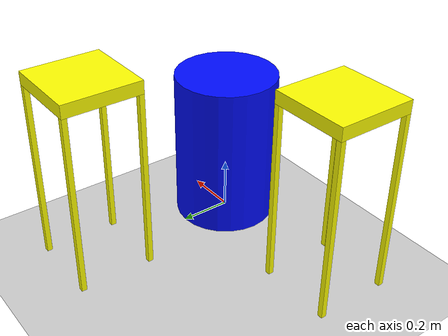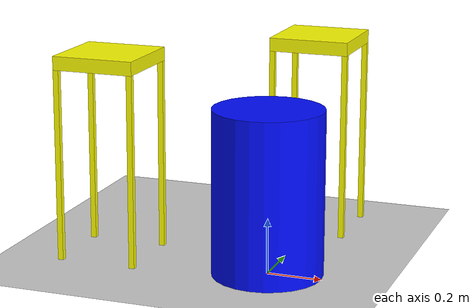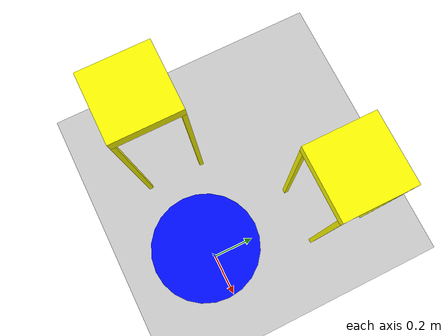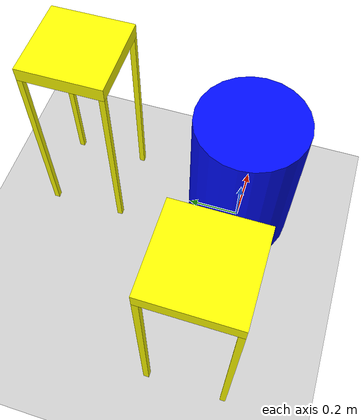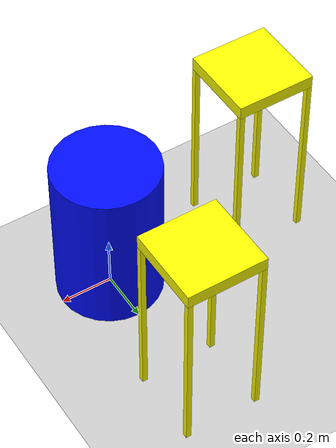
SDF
<sdf version="1.7">
 <world name="default">
  <light name="sun" type="directional">
   <pose>0 0 10 0 -0 0</pose>
   <diffuse>0.8 0.8 0.8 1</diffuse>
   <specular>0.2 0.2 0.2 1</specular>
   <attenuation>
    <range>1000</range>
    <constant>0.9</constant>
    <linear>0.01</linear>
    <quadratic>0.001</quadratic>
   </attenuation>
   <direction>-0.5 0.1 -0.9</direction>
   <spot><inner_angle>0</inner_angle><outer_angle>0</outer_angle><falloff>0</falloff></spot>
  </light>
  <model name="ground_plane">
   <static>1</static>
   <link name="link">
    <collision name="collision">
     <geometry><plane><normal>0 0 1</normal><size>100 100</size></plane></geometry>
     <surface>
      <contact><collide_bitmask>65535</collide_bitmask></contact>
      <friction><ode><mu>100</mu><mu2>50</mu2></ode></friction>
     </surface>
    </collision>
    <visual name="visual">
     <cast_shadows>0</cast_shadows>
     <geometry><plane><normal>0 0 1</normal><size>100 100</size></plane></geometry>
     <material>
      <script><uri>file://media/materials/scripts/gazebo.material</uri><name>Gazebo/Grey</name></script>
     </material>
    </visual>
   </link>
  </model>
  <gravity>0 0 -9.8</gravity>
  <magnetic_field>6e-06 2.3e-05 -4.2e-05</magnetic_field>
  <atmosphere type="adiabatic"/>
  <physics type="ode">
   <max_step_size>0.001</max_step_size>
   <real_time_factor>1</real_time_factor>
   <real_time_update_rate>1000</real_time_update_rate>
  </physics>
  <scene><ambient>0.4 0.4 0.4 1</ambient><background>0.7 0.7 0.7 1</background><shadows>1</shadows></scene>
  <spherical_coordinates>
   <surface_model>EARTH_WGS84</surface_model>
   <latitude_deg>0</latitude_deg>
   <longitude_deg>0</longitude_deg>
   <elevation>0</elevation>
   <heading_deg>0</heading_deg>
  </spherical_coordinates>
  <model name="base_robot_ros">
   <link name="link">
    <inertial>
     <mass>1</mass>
     <inertia><ixx>0.145833</ixx><ixy>0</ixy><ixz>0</ixz><iyy>0.145833</iyy><iyz>0</iyz><izz>0.125</izz></inertia>
    </inertial>
    <visual name="visual">
     <geometry><cylinder><radius>0.2</radius><length>0.6</length></cylinder></geometry>
     <material>
      <script><name>Gazebo/Grey</name><uri>file://media/materials/scripts/gazebo.material</uri></script>
      <shader type="pixel"><normal_map>__default__</normal_map></shader>
      <ambient>0 0.047 1 1</ambient>
      <diffuse>0.7 0.7 0.7 1</diffuse>
      <specular>0.01 0.01 0.01 1</specular>
      <emissive>0 0 0 1</emissive>
     </material>
    </visual>
    <collision name="collision">
     <geometry><cylinder><radius>0.2</radius><length>0.6</length></cylinder></geometry>
     <surface>
      <friction>
       <ode><mu>1</mu><mu2>1</mu2><fdir1>0 0 0</fdir1><slip1>0</slip1><slip2>0</slip2></ode>
       <torsional>
        <coefficient>1</coefficient>
        <patch_radius>0</patch_radius>
        <surface_radius>0</surface_radius>
        <use_patch_radius>1</use_patch_radius>
        <ode><slip>0</slip></ode>
       </torsional>
      </friction>
      <bounce><restitution_coefficient>0</restitution_coefficient><threshold>1e+06</threshold></bounce>
      <contact>
       <collide_without_contact>0</collide_without_contact>
       <collide_without_contact_bitmask>1</collide_without_contact_bitmask>
       <collide_bitmask>1</collide_bitmask>
       <ode>
        <soft_cfm>0</soft_cfm>
        <soft_erp>0.2</soft_erp>
        <kp>1e+13</kp>
        <kd>1</kd>
        <max_vel>0.01</max_vel>
        <min_depth>0</min_depth>
       </ode>
       <bullet>
        <split_impulse>1</split_impulse>
        <split_impulse_penetration_threshold>-0.01</split_impulse_penetration_threshold>
        <soft_cfm>0</soft_cfm>
        <soft_erp>0.2</soft_erp>
        <kp>1e+13</kp>
        <kd>1</kd>
       </bullet>
      </contact>
     </surface>
    </collision>
   </link>
   <static>0</static>
   <pose>0 0 0.3 -2e-06 -4e-06 -0</pose>
  </model>
  <model name="table_robot_ros">
   <link name="link_0">
    <inertial>
     <mass>1</mass>
     <inertia>
      <ixx>0.166667</ixx>
      <ixy>0</ixy>
      <ixz>0</ixz>
      <iyy>0.166667</iyy>
      <iyz>0</iyz>
      <izz>0.166667</izz>
     </inertia>
    </inertial>
    <pose>0 0 0.36 0 -0 0</pose>
    <visual name="visual">
     <geometry><box><size>0.3 0.3 0.05</size></box></geometry>
     <material>
      <lighting>1</lighting>
      <script><uri>file://media/materials/scripts/gazebo.material</uri><name>Gazebo/Grey</name></script>
      <shader type="pixel"><normal_map>__default__</normal_map></shader>
      <ambient>1 1 0 1</ambient>
      <diffuse>0.7 0.7 0.7 1</diffuse>
      <specular>0.01 0.01 0.01 1</specular>
      <emissive>0 0 0 1</emissive>
     </material>
    </visual>
    <collision name="collision">
     <geometry><box><size>0.3 0.3 0.05</size></box></geometry>
     <surface>
      <friction>
       <ode><mu>1</mu><mu2>1</mu2><fdir1>0 0 0</fdir1><slip1>0</slip1><slip2>0</slip2></ode>
       <torsional>
        <coefficient>1</coefficient>
        <patch_radius>0</patch_radius>
        <surface_radius>0</surface_radius>
        <use_patch_radius>1</use_patch_radius>
        <ode><slip>0</slip></ode>
       </torsional>
      </friction>
      <bounce><restitution_coefficient>0</restitution_coefficient><threshold>1e+06</threshold></bounce>
      <contact>
       <collide_without_contact>0</collide_without_contact>
       <collide_without_contact_bitmask>1</collide_without_contact_bitmask>
       <collide_bitmask>1</collide_bitmask>
       <ode>
        <soft_cfm>0</soft_cfm>
        <soft_erp>0.2</soft_erp>
        <kp>1e+13</kp>
        <kd>1</kd>
        <max_vel>0.01</max_vel>
        <min_depth>0</min_depth>
       </ode>
       <bullet>
        <split_impulse>1</split_impulse>
        <split_impulse_penetration_threshold>-0.01</split_impulse_penetration_threshold>
        <soft_cfm>0</soft_cfm>
        <soft_erp>0.2</soft_erp>
        <kp>1e+13</kp>
        <kd>1</kd>
       </bullet>
      </contact>
     </surface>
    </collision>
   </link>
   <link name="link_2">
    <inertial>
     <mass>1</mass>
     <inertia>
      <ixx>0.166667</ixx>
      <ixy>0</ixy>
      <ixz>0</ixz>
      <iyy>0.166667</iyy>
      <iyz>0</iyz>
      <izz>0.166667</izz>
     </inertia>
    </inertial>
    <pose>-0.14 -0.14 -0.015 0 -0 0</pose>
    <visual name="visual">
     <geometry><box><size>0.02 0.02 0.7</size></box></geometry>
     <material>
      <lighting>1</lighting>
      <script><uri>file://media/materials/scripts/gazebo.material</uri><name>Gazebo/Grey</name></script>
      <shader type="pixel"><normal_map>__default__</normal_map></shader>
      <ambient>1 1 0 1</ambient>
      <diffuse>0.7 0.7 0.7 1</diffuse>
      <specular>0.01 0.01 0.01 1</specular>
      <emissive>0 0 0 1</emissive>
     </material>
    </visual>
    <collision name="collision">
     <geometry><box><size>0.02 0.02 0.7</size></box></geometry>
     <surface>
      <friction>
       <ode><mu>1</mu><mu2>1</mu2><fdir1>0 0 0</fdir1><slip1>0</slip1><slip2>0</slip2></ode>
       <torsional>
        <coefficient>1</coefficient>
        <patch_radius>0</patch_radius>
        <surface_radius>0</surface_radius>
        <use_patch_radius>1</use_patch_radius>
        <ode><slip>0</slip></ode>
       </torsional>
      </friction>
      <bounce><restitution_coefficient>0</restitution_coefficient><threshold>1e+06</threshold></bounce>
      <contact>
       <collide_without_contact>0</collide_without_contact>
       <collide_without_contact_bitmask>1</collide_without_contact_bitmask>
       <collide_bitmask>1</collide_bitmask>
       <ode>
        <soft_cfm>0</soft_cfm>
        <soft_erp>0.2</soft_erp>
        <kp>1e+13</kp>
        <kd>1</kd>
        <max_vel>0.01</max_vel>
        <min_depth>0</min_depth>
       </ode>
       <bullet>
        <split_impulse>1</split_impulse>
        <split_impulse_penetration_threshold>-0.01</split_impulse_penetration_threshold>
        <soft_cfm>0</soft_cfm>
        <soft_erp>0.2</soft_erp>
        <kp>1e+13</kp>
        <kd>1</kd>
       </bullet>
      </contact>
     </surface>
    </collision>
   </link>
   <link name="link_2_clone">
    <inertial>
     <mass>1</mass>
     <inertia>
      <ixx>0.166667</ixx>
      <ixy>0</ixy>
      <ixz>0</ixz>
      <iyy>0.166667</iyy>
      <iyz>0</iyz>
      <izz>0.166667</izz>
     </inertia>
    </inertial>
    <pose>-0.14 0.14 -0.015 0 -0 0</pose>
    <visual name="visual">
     <geometry><box><size>0.02 0.02 0.7</size></box></geometry>
     <material>
      <lighting>1</lighting>
      <script><uri>file://media/materials/scripts/gazebo.material</uri><name>Gazebo/Grey</name></script>
      <shader type="pixel"><normal_map>__default__</normal_map></shader>
      <ambient>1 1 0 1</ambient>
      <diffuse>0.7 0.7 0.7 1</diffuse>
      <specular>0.01 0.01 0.01 1</specular>
      <emissive>0 0 0 1</emissive>
     </material>
    </visual>
    <collision name="collision">
     <geometry><box><size>0.02 0.02 0.7</size></box></geometry>
     <surface>
      <friction>
       <ode><mu>1</mu><mu2>1</mu2><fdir1>0 0 0</fdir1><slip1>0</slip1><slip2>0</slip2></ode>
       <torsional>
        <coefficient>1</coefficient>
        <patch_radius>0</patch_radius>
        <surface_radius>0</surface_radius>
        <use_patch_radius>1</use_patch_radius>
        <ode><slip>0</slip></ode>
       </torsional>
      </friction>
      <bounce><restitution_coefficient>0</restitution_coefficient><threshold>1e+06</threshold></bounce>
      <contact>
       <collide_without_contact>0</collide_without_contact>
       <collide_without_contact_bitmask>1</collide_without_contact_bitmask>
       <collide_bitmask>1</collide_bitmask>
       <ode>
        <soft_cfm>0</soft_cfm>
        <soft_erp>0.2</soft_erp>
        <kp>1e+13</kp>
        <kd>1</kd>
        <max_vel>0.01</max_vel>
        <min_depth>0</min_depth>
       </ode>
       <bullet>
        <split_impulse>1</split_impulse>
        <split_impulse_penetration_threshold>-0.01</split_impulse_penetration_threshold>
        <soft_cfm>0</soft_cfm>
        <soft_erp>0.2</soft_erp>
        <kp>1e+13</kp>
        <kd>1</kd>
       </bullet>
      </contact>
     </surface>
    </collision>
   </link>
   <link name="link_2_clone_0">
    <inertial>
     <mass>1</mass>
     <inertia>
      <ixx>0.166667</ixx>
      <ixy>0</ixy>
      <ixz>0</ixz>
      <iyy>0.166667</iyy>
      <iyz>0</iyz>
      <izz>0.166667</izz>
     </inertia>
    </inertial>
    <pose>0.14 0.14 -0.015 0 -0 0</pose>
    <visual name="visual">
     <geometry><box><size>0.02 0.02 0.7</size></box></geometry>
     <material>
      <lighting>1</lighting>
      <script><uri>file://media/materials/scripts/gazebo.material</uri><name>Gazebo/Grey</name></script>
      <shader type="pixel"><normal_map>__default__</normal_map></shader>
      <ambient>1 1 0 1</ambient>
      <diffuse>0.7 0.7 0.7 1</diffuse>
      <specular>0.01 0.01 0.01 1</specular>
      <emissive>0 0 0 1</emissive>
     </material>
    </visual>
    <collision name="collision">
     <geometry><box><size>0.02 0.02 0.7</size></box></geometry>
     <surface>
      <friction>
       <ode><mu>1</mu><mu2>1</mu2><fdir1>0 0 0</fdir1><slip1>0</slip1><slip2>0</slip2></ode>
       <torsional>
        <coefficient>1</coefficient>
        <patch_radius>0</patch_radius>
        <surface_radius>0</surface_radius>
        <use_patch_radius>1</use_patch_radius>
        <ode><slip>0</slip></ode>
       </torsional>
      </friction>
      <bounce><restitution_coefficient>0</restitution_coefficient><threshold>1e+06</threshold></bounce>
      <contact>
       <collide_without_contact>0</collide_without_contact>
       <collide_without_contact_bitmask>1</collide_without_contact_bitmask>
       <collide_bitmask>1</collide_bitmask>
       <ode>
        <soft_cfm>0</soft_cfm>
        <soft_erp>0.2</soft_erp>
        <kp>1e+13</kp>
        <kd>1</kd>
        <max_vel>0.01</max_vel>
        <min_depth>0</min_depth>
       </ode>
       <bullet>
        <split_impulse>1</split_impulse>
        <split_impulse_penetration_threshold>-0.01</split_impulse_penetration_threshold>
        <soft_cfm>0</soft_cfm>
        <soft_erp>0.2</soft_erp>
        <kp>1e+13</kp>
        <kd>1</kd>
       </bullet>
      </contact>
     </surface>
    </collision>
   </link>
   <link name="link_2_clone_1">
    <inertial>
     <mass>1</mass>
     <inertia>
      <ixx>0.166667</ixx>
      <ixy>0</ixy>
      <ixz>0</ixz>
      <iyy>0.166667</iyy>
      <iyz>0</iyz>
      <izz>0.166667</izz>
     </inertia>
    </inertial>
    <pose>0.14 -0.14 -0.015 0 -0 0</pose>
    <visual name="visual">
     <geometry><box><size>0.02 0.02 0.7</size></box></geometry>
     <material>
      <lighting>1</lighting>
      <script><uri>file://media/materials/scripts/gazebo.material</uri><name>Gazebo/Grey</name></script>
      <shader type="pixel"><normal_map>__default__</normal_map></shader>
      <ambient>1 1 0 1</ambient>
      <diffuse>0.7 0.7 0.7 1</diffuse>
      <specular>0.01 0.01 0.01 1</specular>
      <emissive>0 0 0 1</emissive>
     </material>
    </visual>
    <collision name="collision">
     <geometry><box><size>0.02 0.02 0.7</size></box></geometry>
     <surface>
      <friction>
       <ode><mu>1</mu><mu2>1</mu2><fdir1>0 0 0</fdir1><slip1>0</slip1><slip2>0</slip2></ode>
       <torsional>
        <coefficient>1</coefficient>
        <patch_radius>0</patch_radius>
        <surface_radius>0</surface_radius>
        <use_patch_radius>1</use_patch_radius>
        <ode><slip>0</slip></ode>
       </torsional>
      </friction>
      <bounce><restitution_coefficient>0</restitution_coefficient><threshold>1e+06</threshold></bounce>
      <contact>
       <collide_without_contact>0</collide_without_contact>
       <collide_without_contact_bitmask>1</collide_without_contact_bitmask>
       <collide_bitmask>1</collide_bitmask>
       <ode>
        <soft_cfm>0</soft_cfm>
        <soft_erp>0.2</soft_erp>
        <kp>1e+13</kp>
        <kd>1</kd>
        <max_vel>0.01</max_vel>
        <min_depth>0</min_depth>
       </ode>
       <bullet>
        <split_impulse>1</split_impulse>
        <split_impulse_penetration_threshold>-0.01</split_impulse_penetration_threshold>
        <soft_cfm>0</soft_cfm>
        <soft_erp>0.2</soft_erp>
        <kp>1e+13</kp>
        <kd>1</kd>
       </bullet>
      </contact>
     </surface>
    </collision>
   </link>
   <joint name="link_0_JOINT_10" type="fixed">
    <parent>link_0</parent>
    <child>link_2</child>
    <physics>
     <ode><limit><cfm>0</cfm><erp>0.2</erp></limit><suspension><cfm>0</cfm><erp>0.2</erp></suspension></ode>
    </physics>
   </joint>
   <joint name="link_0_JOINT_7" type="fixed">
    <parent>link_0</parent>
    <child>link_2_clone_0</child>
    <physics>
     <ode><limit><cfm>0</cfm><erp>0.2</erp></limit><suspension><cfm>0</cfm><erp>0.2</erp></suspension></ode>
    </physics>
   </joint>
   <joint name="link_0_JOINT_8" type="fixed">
    <parent>link_0</parent>
    <child>link_2_clone_1</child>
    <physics>
     <ode><limit><cfm>0</cfm><erp>0.2</erp></limit><suspension><cfm>0</cfm><erp>0.2</erp></suspension></ode>
    </physics>
   </joint>
   <joint name="link_0_JOINT_9" type="fixed">
    <parent>link_0</parent>
    <child>link_2_clone</child>
    <physics>
     <ode><limit><cfm>0</cfm><erp>0.2</erp></limit><suspension><cfm>0</cfm><erp>0.2</erp></suspension></ode>
    </physics>
   </joint>
   <static>0</static>
   <pose>-0.6 0 0.375 0 -0 0</pose>
  </model>
  <model name="table_robot_ros_clone">
   <link name="link_0">
    <inertial>
     <mass>1</mass>
     <inertia>
      <ixx>0.166667</ixx>
      <ixy>0</ixy>
      <ixz>0</ixz>
      <iyy>0.166667</iyy>
      <iyz>0</iyz>
      <izz>0.166667</izz>
     </inertia>
    </inertial>
    <pose>0 0 0.36 0 -0 0</pose>
    <visual name="visual">
     <geometry><box><size>0.3 0.3 0.05</size></box></geometry>
     <material>
      <lighting>1</lighting>
      <script><uri>file://media/materials/scripts/gazebo.material</uri><name>Gazebo/Grey</name></script>
      <shader type="pixel"><normal_map>__default__</normal_map></shader>
      <ambient>1 1 0 1</ambient>
      <diffuse>0.7 0.7 0.7 1</diffuse>
      <specular>0.01 0.01 0.01 1</specular>
      <emissive>0 0 0 1</emissive>
     </material>
    </visual>
    <collision name="collision">
     <geometry><box><size>0.3 0.3 0.05</size></box></geometry>
     <surface>
      <friction>
       <ode><mu>1</mu><mu2>1</mu2><fdir1>0 0 0</fdir1><slip1>0</slip1><slip2>0</slip2></ode>
       <torsional>
        <coefficient>1</coefficient>
        <patch_radius>0</patch_radius>
        <surface_radius>0</surface_radius>
        <use_patch_radius>1</use_patch_radius>
        <ode><slip>0</slip></ode>
       </torsional>
      </friction>
      <bounce><restitution_coefficient>0</restitution_coefficient><threshold>1e+06</threshold></bounce>
      <contact>
       <collide_without_contact>0</collide_without_contact>
       <collide_without_contact_bitmask>1</collide_without_contact_bitmask>
       <collide_bitmask>1</collide_bitmask>
       <ode>
        <soft_cfm>0</soft_cfm>
        <soft_erp>0.2</soft_erp>
        <kp>1e+13</kp>
        <kd>1</kd>
        <max_vel>0.01</max_vel>
        <min_depth>0</min_depth>
       </ode>
       <bullet>
        <split_impulse>1</split_impulse>
        <split_impulse_penetration_threshold>-0.01</split_impulse_penetration_threshold>
        <soft_cfm>0</soft_cfm>
        <soft_erp>0.2</soft_erp>
        <kp>1e+13</kp>
        <kd>1</kd>
       </bullet>
      </contact>
     </surface>
    </collision>
   </link>
   <link name="link_2">
    <inertial>
     <mass>1</mass>
     <inertia>
      <ixx>0.166667</ixx>
      <ixy>0</ixy>
      <ixz>0</ixz>
      <iyy>0.166667</iyy>
      <iyz>0</iyz>
      <izz>0.166667</izz>
     </inertia>
    </inertial>
    <pose>-0.14 -0.14 -0.015 0 -0 0</pose>
    <visual name="visual">
     <geometry><box><size>0.02 0.02 0.7</size></box></geometry>
     <material>
      <lighting>1</lighting>
      <script><uri>file://media/materials/scripts/gazebo.material</uri><name>Gazebo/Grey</name></script>
      <shader type="pixel"><normal_map>__default__</normal_map></shader>
      <ambient>1 1 0 1</ambient>
      <diffuse>0.7 0.7 0.7 1</diffuse>
      <specular>0.01 0.01 0.01 1</specular>
      <emissive>0 0 0 1</emissive>
     </material>
    </visual>
    <collision name="collision">
     <geometry><box><size>0.02 0.02 0.7</size></box></geometry>
     <surface>
      <friction>
       <ode><mu>1</mu><mu2>1</mu2><fdir1>0 0 0</fdir1><slip1>0</slip1><slip2>0</slip2></ode>
       <torsional>
        <coefficient>1</coefficient>
        <patch_radius>0</patch_radius>
        <surface_radius>0</surface_radius>
        <use_patch_radius>1</use_patch_radius>
        <ode><slip>0</slip></ode>
       </torsional>
      </friction>
      <bounce><restitution_coefficient>0</restitution_coefficient><threshold>1e+06</threshold></bounce>
      <contact>
       <collide_without_contact>0</collide_without_contact>
       <collide_without_contact_bitmask>1</collide_without_contact_bitmask>
       <collide_bitmask>1</collide_bitmask>
       <ode>
        <soft_cfm>0</soft_cfm>
        <soft_erp>0.2</soft_erp>
        <kp>1e+13</kp>
        <kd>1</kd>
        <max_vel>0.01</max_vel>
        <min_depth>0</min_depth>
       </ode>
       <bullet>
        <split_impulse>1</split_impulse>
        <split_impulse_penetration_threshold>-0.01</split_impulse_penetration_threshold>
        <soft_cfm>0</soft_cfm>
        <soft_erp>0.2</soft_erp>
        <kp>1e+13</kp>
        <kd>1</kd>
       </bullet>
      </contact>
     </surface>
    </collision>
   </link>
   <link name="link_2_clone">
    <inertial>
     <mass>1</mass>
     <inertia>
      <ixx>0.166667</ixx>
      <ixy>0</ixy>
      <ixz>0</ixz>
      <iyy>0.166667</iyy>
      <iyz>0</iyz>
      <izz>0.166667</izz>
     </inertia>
    </inertial>
    <pose>-0.14 0.14 -0.015 0 -0 0</pose>
    <visual name="visual">
     <geometry><box><size>0.02 0.02 0.7</size></box></geometry>
     <material>
      <lighting>1</lighting>
      <script><uri>file://media/materials/scripts/gazebo.material</uri><name>Gazebo/Grey</name></script>
      <shader type="pixel"><normal_map>__default__</normal_map></shader>
      <ambient>1 1 0 1</ambient>
      <diffuse>0.7 0.7 0.7 1</diffuse>
      <specular>0.01 0.01 0.01 1</specular>
      <emissive>0 0 0 1</emissive>
     </material>
    </visual>
    <collision name="collision">
     <geometry><box><size>0.02 0.02 0.7</size></box></geometry>
     <surface>
      <friction>
       <ode><mu>1</mu><mu2>1</mu2><fdir1>0 0 0</fdir1><slip1>0</slip1><slip2>0</slip2></ode>
       <torsional>
        <coefficient>1</coefficient>
        <patch_radius>0</patch_radius>
        <surface_radius>0</surface_radius>
        <use_patch_radius>1</use_patch_radius>
        <ode><slip>0</slip></ode>
       </torsional>
      </friction>
      <bounce><restitution_coefficient>0</restitution_coefficient><threshold>1e+06</threshold></bounce>
      <contact>
       <collide_without_contact>0</collide_without_contact>
       <collide_without_contact_bitmask>1</collide_without_contact_bitmask>
       <collide_bitmask>1</collide_bitmask>
       <ode>
        <soft_cfm>0</soft_cfm>
        <soft_erp>0.2</soft_erp>
        <kp>1e+13</kp>
        <kd>1</kd>
        <max_vel>0.01</max_vel>
        <min_depth>0</min_depth>
       </ode>
       <bullet>
        <split_impulse>1</split_impulse>
        <split_impulse_penetration_threshold>-0.01</split_impulse_penetration_threshold>
        <soft_cfm>0</soft_cfm>
        <soft_erp>0.2</soft_erp>
        <kp>1e+13</kp>
        <kd>1</kd>
       </bullet>
      </contact>
     </surface>
    </collision>
   </link>
   <link name="link_2_clone_0">
    <inertial>
     <mass>1</mass>
     <inertia>
      <ixx>0.166667</ixx>
      <ixy>0</ixy>
      <ixz>0</ixz>
      <iyy>0.166667</iyy>
      <iyz>0</iyz>
      <izz>0.166667</izz>
     </inertia>
    </inertial>
    <pose>0.14 0.14 -0.015 0 -0 0</pose>
    <visual name="visual">
     <geometry><box><size>0.02 0.02 0.7</size></box></geometry>
     <material>
      <lighting>1</lighting>
      <script><uri>file://media/materials/scripts/gazebo.material</uri><name>Gazebo/Grey</name></script>
      <shader type="pixel"><normal_map>__default__</normal_map></shader>
      <ambient>1 1 0 1</ambient>
      <diffuse>0.7 0.7 0.7 1</diffuse>
      <specular>0.01 0.01 0.01 1</specular>
      <emissive>0 0 0 1</emissive>
     </material>
    </visual>
    <collision name="collision">
     <geometry><box><size>0.02 0.02 0.7</size></box></geometry>
     <surface>
      <friction>
       <ode><mu>1</mu><mu2>1</mu2><fdir1>0 0 0</fdir1><slip1>0</slip1><slip2>0</slip2></ode>
       <torsional>
        <coefficient>1</coefficient>
        <patch_radius>0</patch_radius>
        <surface_radius>0</surface_radius>
        <use_patch_radius>1</use_patch_radius>
        <ode><slip>0</slip></ode>
       </torsional>
      </friction>
      <bounce><restitution_coefficient>0</restitution_coefficient><threshold>1e+06</threshold></bounce>
      <contact>
       <collide_without_contact>0</collide_without_contact>
       <collide_without_contact_bitmask>1</collide_without_contact_bitmask>
       <collide_bitmask>1</collide_bitmask>
       <ode>
        <soft_cfm>0</soft_cfm>
        <soft_erp>0.2</soft_erp>
        <kp>1e+13</kp>
        <kd>1</kd>
        <max_vel>0.01</max_vel>
        <min_depth>0</min_depth>
       </ode>
       <bullet>
        <split_impulse>1</split_impulse>
        <split_impulse_penetration_threshold>-0.01</split_impulse_penetration_threshold>
        <soft_cfm>0</soft_cfm>
        <soft_erp>0.2</soft_erp>
        <kp>1e+13</kp>
        <kd>1</kd>
       </bullet>
      </contact>
     </surface>
    </collision>
   </link>
   <link name="link_2_clone_1">
    <inertial>
     <mass>1</mass>
     <inertia>
      <ixx>0.166667</ixx>
      <ixy>0</ixy>
      <ixz>0</ixz>
      <iyy>0.166667</iyy>
      <iyz>0</iyz>
      <izz>0.166667</izz>
     </inertia>
    </inertial>
    <pose>0.14 -0.14 -0.015 0 -0 0</pose>
    <visual name="visual">
     <geometry><box><size>0.02 0.02 0.7</size></box></geometry>
     <material>
      <lighting>1</lighting>
      <script><uri>file://media/materials/scripts/gazebo.material</uri><name>Gazebo/Grey</name></script>
      <shader type="pixel"><normal_map>__default__</normal_map></shader>
      <ambient>1 1 0 1</ambient>
      <diffuse>0.7 0.7 0.7 1</diffuse>
      <specular>0.01 0.01 0.01 1</specular>
      <emissive>0 0 0 1</emissive>
     </material>
    </visual>
    <collision name="collision">
     <geometry><box><size>0.02 0.02 0.7</size></box></geometry>
     <surface>
      <friction>
       <ode><mu>1</mu><mu2>1</mu2><fdir1>0 0 0</fdir1><slip1>0</slip1><slip2>0</slip2></ode>
       <torsional>
        <coefficient>1</coefficient>
        <patch_radius>0</patch_radius>
        <surface_radius>0</surface_radius>
        <use_patch_radius>1</use_patch_radius>
        <ode><slip>0</slip></ode>
       </torsional>
      </friction>
      <bounce><restitution_coefficient>0</restitution_coefficient><threshold>1e+06</threshold></bounce>
      <contact>
       <collide_without_contact>0</collide_without_contact>
       <collide_without_contact_bitmask>1</collide_without_contact_bitmask>
       <collide_bitmask>1</collide_bitmask>
       <ode>
        <soft_cfm>0</soft_cfm>
        <soft_erp>0.2</soft_erp>
        <kp>1e+13</kp>
        <kd>1</kd>
        <max_vel>0.01</max_vel>
        <min_depth>0</min_depth>
       </ode>
       <bullet>
        <split_impulse>1</split_impulse>
        <split_impulse_penetration_threshold>-0.01</split_impulse_penetration_threshold>
        <soft_cfm>0</soft_cfm>
        <soft_erp>0.2</soft_erp>
        <kp>1e+13</kp>
        <kd>1</kd>
       </bullet>
      </contact>
     </surface>
    </collision>
   </link>
   <joint name="link_0_JOINT_10" type="fixed">
    <parent>link_0</parent>
    <child>link_2</child>
    <physics>
     <ode><limit><cfm>0</cfm><erp>0.2</erp></limit><suspension><cfm>0</cfm><erp>0.2</erp></suspension></ode>
    </physics>
   </joint>
   <joint name="link_0_JOINT_7" type="fixed">
    <parent>link_0</parent>
    <child>link_2_clone_0</child>
    <physics>
     <ode><limit><cfm>0</cfm><erp>0.2</erp></limit><suspension><cfm>0</cfm><erp>0.2</erp></suspension></ode>
    </physics>
   </joint>
   <joint name="link_0_JOINT_8" type="fixed">
    <parent>link_0</parent>
    <child>link_2_clone_1</child>
    <physics>
     <ode><limit><cfm>0</cfm><erp>0.2</erp></limit><suspension><cfm>0</cfm><erp>0.2</erp></suspension></ode>
    </physics>
   </joint>
   <joint name="link_0_JOINT_9" type="fixed">
    <parent>link_0</parent>
    <child>link_2_clone</child>
    <physics>
     <ode><limit><cfm>0</cfm><erp>0.2</erp></limit><suspension><cfm>0</cfm><erp>0.2</erp></suspension></ode>
    </physics>
   </joint>
   <static>0</static>
   <pose>0 0.6 0.375 0 -0 0</pose>
  </model>
 </world>
</sdf>
